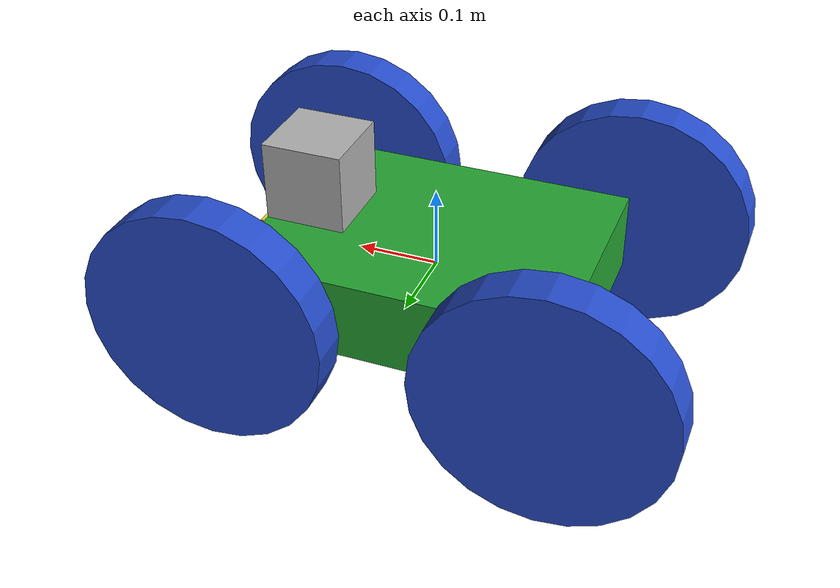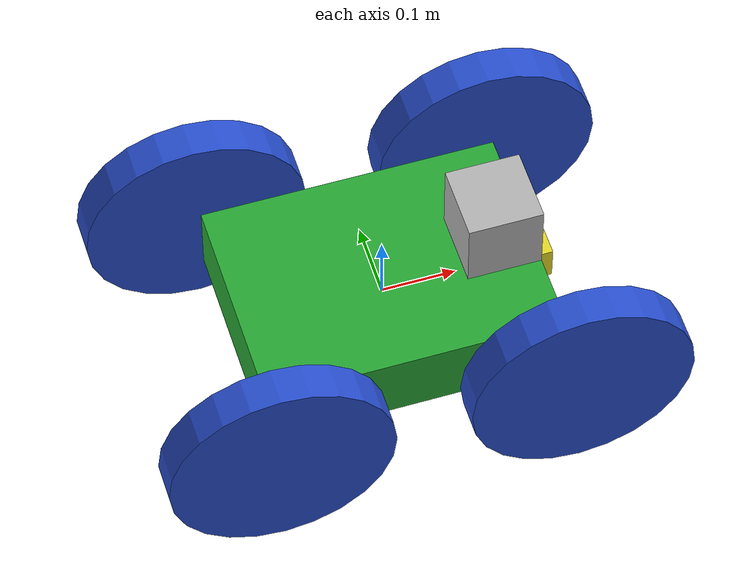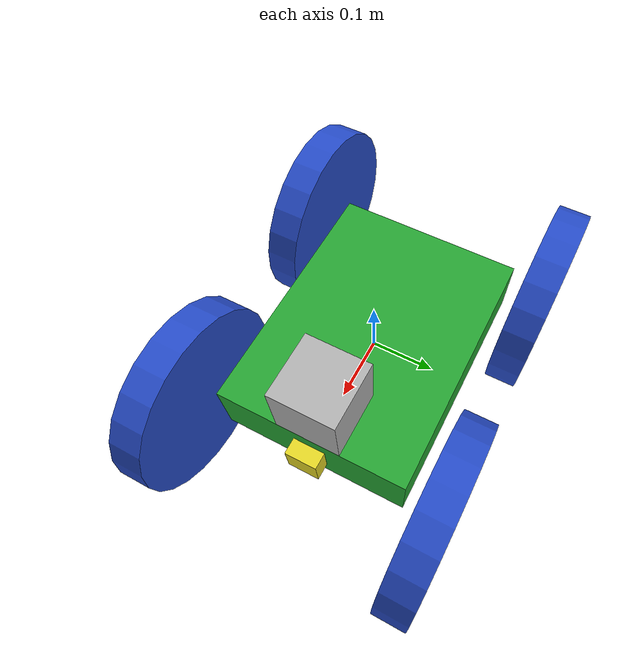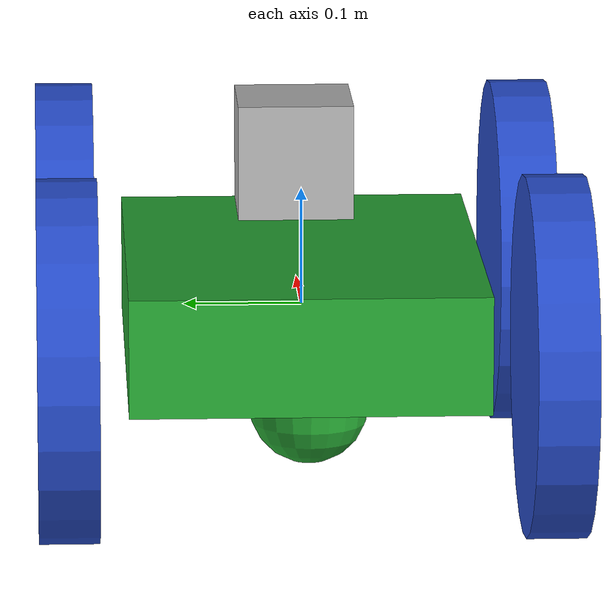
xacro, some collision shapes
<?xml version='1.0'?>

<robot name="my_robot" xmlns:xacro="http://www.ros.org/wiki/xacro">
<xacro:include filename="$(find my_robot)/urdf/my_robot.gazebo" />

  <link name="robot_footprint"></link>

  <joint name="robot_footprint_joint" type="fixed">
    <origin xyz="0 0 0" rpy="0 0 0" />
    <parent link="robot_footprint"/>
    <child link="chassis" />
  </joint>

  <link name='chassis'>
    <pose>0 0 0.1 0 0 0</pose>

    <inertial>
      <mass value="15.0"/>
      <origin xyz="0.0 0 0" rpy=" 0 0 0"/>
      <inertia
          ixx="0.1" ixy="0" ixz="0"
          iyy="0.1" iyz="0"
          izz="0.1"
      />
    </inertial>

    <collision name='collision'>
      <origin xyz="0 0 0" rpy=" 0 0 0"/>
      <geometry>
        <box size=".4 .3 .1"/>
      </geometry>
    </collision>

    <visual name='chassis_visual'>
      <origin xyz="0 0 0" rpy=" 0 0 0"/>
      <geometry>
        <box size=".4 .3 .1"/>
      </geometry>
    </visual>

    <collision name='back_caster_collision'>
      <origin xyz="-0.15 0 -0.05" rpy=" 0 0 0"/>
      <geometry>
	<sphere radius="0.05"/>
      </geometry>
    </collision>

    <visual name='back_caster_visual'>
      <origin xyz="-0.15 0 -0.05" rpy=" 0 0 0"/>
      <geometry>
        <sphere radius="0.05"/>
      </geometry>
    </visual>

    <collision name='front_caster_collision'>
      <origin xyz="0.15 0 -0.05" rpy=" 0 0 0"/>
      <geometry>
        <sphere radius="0.0499"/>
      </geometry>
    </collision>

    <visual name='front_caster_visual'>
      <origin xyz="0.15 0 -0.05" rpy=" 0 0 0"/>
      <geometry>
        <sphere radius="0.05"/>
      </geometry>
    </visual>

  </link>

  <link name='left_wheel'>
    <inertial>
        <mass value="5"/>
	<origin xyz="0 0 0" rpy=" 0 1.5707 1.5707"/>
        <inertia
          ixx="0.1" ixy="0" ixz="0"
          iyy="0.1" iyz="0"
          izz="0.1"
        />
    </inertial>

    <collision name='left_wheel_collision'>
      <origin xyz="0 0 0" rpy=" 0 1.5707 1.5707"/>
      <geometry>
        <cylinder length="0.05" radius="0.15"/>
      </geometry>
    </collision>

    <visual name='left_wheel_visual'>
      <origin xyz="0 0 0" rpy=" 0 1.5707 1.5707"/>
      <geometry>
        <cylinder length="0.05" radius="0.15"/>
      </geometry>
    </visual>

  </link>

  <link name='right_wheel'>
    <inertial>
        <mass value="5"/>
	<origin xyz="0 0 0" rpy=" 0 1.5707 1.5707"/>
        <inertia
          ixx="0.1" ixy="0" ixz="0"
          iyy="0.1" iyz="0"
          izz="0.1"
        />
    </inertial>

    <collision name='right_wheel_collision'>
      <origin xyz="0 0 0" rpy=" 0 1.5707 1.5707"/>
      <geometry>
        <cylinder length="0.05" radius="0.15"/>
      </geometry>
    </collision>

    <visual name='right_wheel_visual'>
      <origin xyz="0 0 0" rpy=" 0 1.5707 1.5707"/>
      <geometry>
        <cylinder length="0.05" radius="0.15"/>
      </geometry>
    </visual>

  </link>

  <link name='rear_left_wheel'>
    <inertial>
        <mass value="5"/>
	<origin xyz="0 0 0" rpy=" 0 1.5707 1.5707"/>
        <inertia
          ixx="0.1" ixy="0" ixz="0"
          iyy="0.1" iyz="0"
          izz="0.1"
        />
    </inertial>

    <collision name='rear_left_wheel_collision'>
      <origin xyz="0 0 0" rpy=" 0 1.5707 1.5707"/>
      <geometry>
        <cylinder length="0.05" radius="0.15"/>
      </geometry>
    </collision>

    <visual name='rear_left_wheel_visual'>
      <origin xyz="0 0 0" rpy=" 0 1.5707 1.5707"/>
      <geometry>
        <cylinder length="0.05" radius="0.15"/>
      </geometry>
    </visual>

  </link>

  <link name='rear_right_wheel'>
    <inertial>
        <mass value="5"/>
	<origin xyz="0 0 0" rpy=" 0 1.5707 1.5707"/>
        <inertia
          ixx="0.1" ixy="0" ixz="0"
          iyy="0.1" iyz="0"
          izz="0.1"
        />
    </inertial>

    <collision name='rear_right_wheel_collision'>
      <origin xyz="0 0 0" rpy=" 0 1.5707 1.5707"/>
      <geometry>
        <cylinder length="0.05" radius="0.15"/>
      </geometry>
    </collision>

    <visual name='rear_right_wheel_visual'>
      <origin xyz="0 0 0" rpy=" 0 1.5707 1.5707"/>
      <geometry>
        <cylinder length="0.05" radius="0.15"/>
      </geometry>
    </visual>

  </link>

  <link name='camera'>
    <inertial>
        <mass value="0.1"/>
	<origin xyz="0.05 0.05 0.05" rpy=" 0 0 0"/>
        <inertia
          ixx="1e-6" ixy="0" ixz="0"
          iyy="1e-6" iyz="0"
          izz="1e-6"
        />
    </inertial>

    <collision name='camera_collision'>
      <origin xyz="0 0 0" rpy=" 0 0 0"/>
      <geometry>
        <box size="0.05 0.05 0.05"/>
      </geometry>
    </collision>

    <visual name='camera_visual'>
      <origin xyz="0 0 0" rpy=" 0 0 0"/>
      <geometry>
        <box size="0.05 0.05 0.05"/>
      </geometry>
    </visual>

  </link>

  <link name='hokuyo'>
    <inertial>
        <mass value="1e-5"/>
	<origin xyz="0 0 0" rpy=" 0 0 0"/>
        <inertia
          ixx="1e-6" ixy="0" ixz="0"
          iyy="1e-6" iyz="0"
          izz="1e-6"
        />
    </inertial>

    <collision name='lidar_collision'>
      <origin xyz="0 0 0" rpy=" 0 0 0"/>
      <geometry>
        <box size="0.1 0.1 0.1"/>
      </geometry>
    </collision>

    <visual name='lidar_visual'>
      <origin xyz="0 0 0" rpy=" 0 0 0"/>
      <geometry>
        <mesh filename="package://my_robot/meshes/hokuyo.dae"/>
      </geometry>
    </visual>

  </link>

  <joint type="fixed" name="camera_joint">
    <origin xyz="0.2 0 0" rpy="0 0 0"/>
    <child link="camera"/>
    <parent link="chassis"/>
    <axis xyz="0 1 0" rpy="0 0 0"/>
  </joint>

  <joint type="fixed" name="hokuyo_joint">
    <origin xyz="0.15 0 0.1" rpy="0 0 0"/>
    <child link="hokuyo"/>
    <parent link="chassis"/>
    <axis xyz="0 1 0" rpy="0 0 0"/>
  </joint>

  <joint type="continuous" name="left_wheel_hinge">
    <origin xyz="0.2 0.2 0" rpy="0 0 0"/>
    <child link="left_wheel"/>
    <parent link="chassis"/>
    <axis xyz="0 1 0" rpy="0 0 0"/>
    <limit effort="10000" velocity="1000"/>
    <dynamics damping="1.0" friction="1.0"/>
  </joint>

 <joint type="continuous" name="right_wheel_hinge">
    <origin xyz="0.2 -0.2 0" rpy="0 0 0"/>
    <child link="right_wheel"/>
    <parent link="chassis"/>
    <axis xyz="0 1 0" rpy="0 0 0"/>
    <limit effort="10000" velocity="1000"/>
    <dynamics damping="1.0" friction="1.0"/>
  </joint>

  <joint type="continuous" name="rear_left_wheel_hinge">
    <origin xyz="-0.2 0.2 0" rpy="0 0 0"/>
    <child link="rear_left_wheel"/>
    <parent link="chassis"/>
    <axis xyz="0 1 0" rpy="0 0 0"/>
    <limit effort="10000" velocity="1000"/>
    <dynamics damping="1.0" friction="1.0"/>
  </joint>

 <joint type="continuous" name="rear_right_wheel_hinge">
    <origin xyz="-0.2 -0.2 0" rpy="0 0 0"/>
    <child link="rear_right_wheel"/>
    <parent link="chassis"/>
    <axis xyz="0 1 0" rpy="0 0 0"/>
    <limit effort="10000" velocity="1000"/>
    <dynamics damping="1.0" friction="1.0"/>
  </joint>

  <gazebo reference="left_wheel">
    <material>Gazebo/Blue</material>
  </gazebo>

  <gazebo reference="right_wheel">
    <material>Gazebo/Blue</material>
  </gazebo>

  <gazebo reference="rear_left_wheel">
    <material>Gazebo/Blue</material>
  </gazebo>

  <gazebo reference="rear_right_wheel">
    <material>Gazebo/Blue</material>
  </gazebo>

  <gazebo reference="chassis">
    <material>Gazebo/Green</material>
  </gazebo>

  <gazebo reference="camera">
    <material>Gazebo/Yellow</material>
  </gazebo>

</robot>
